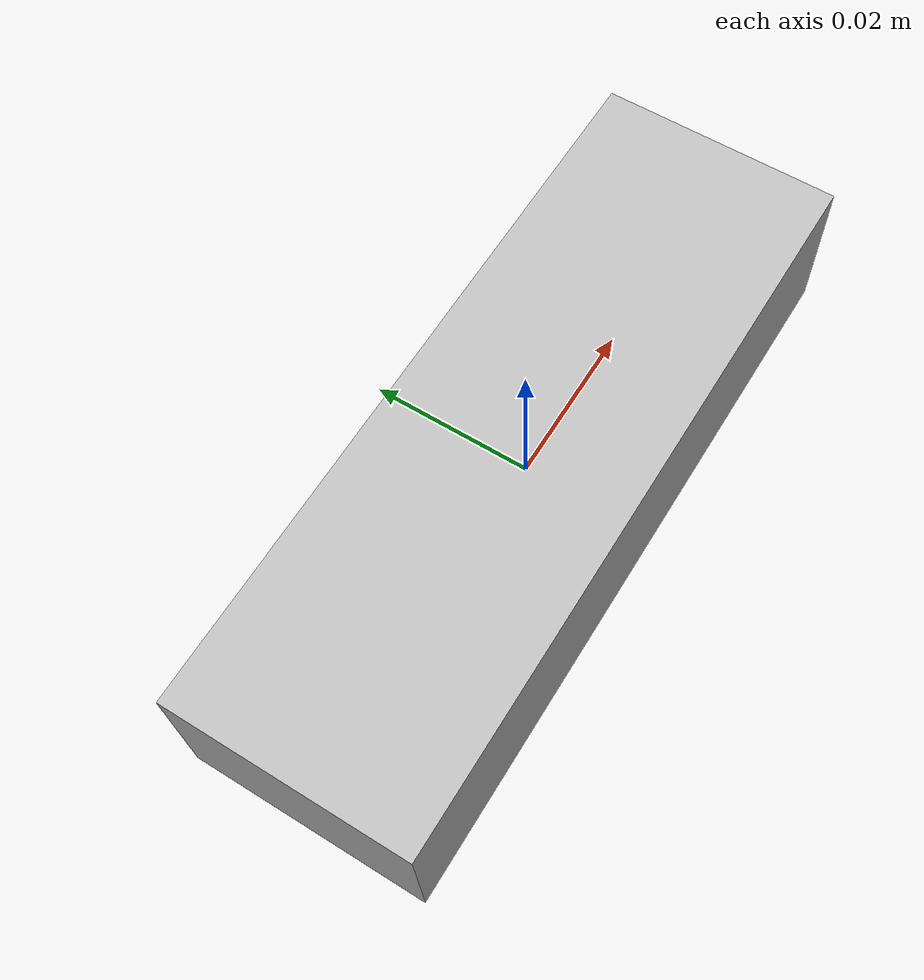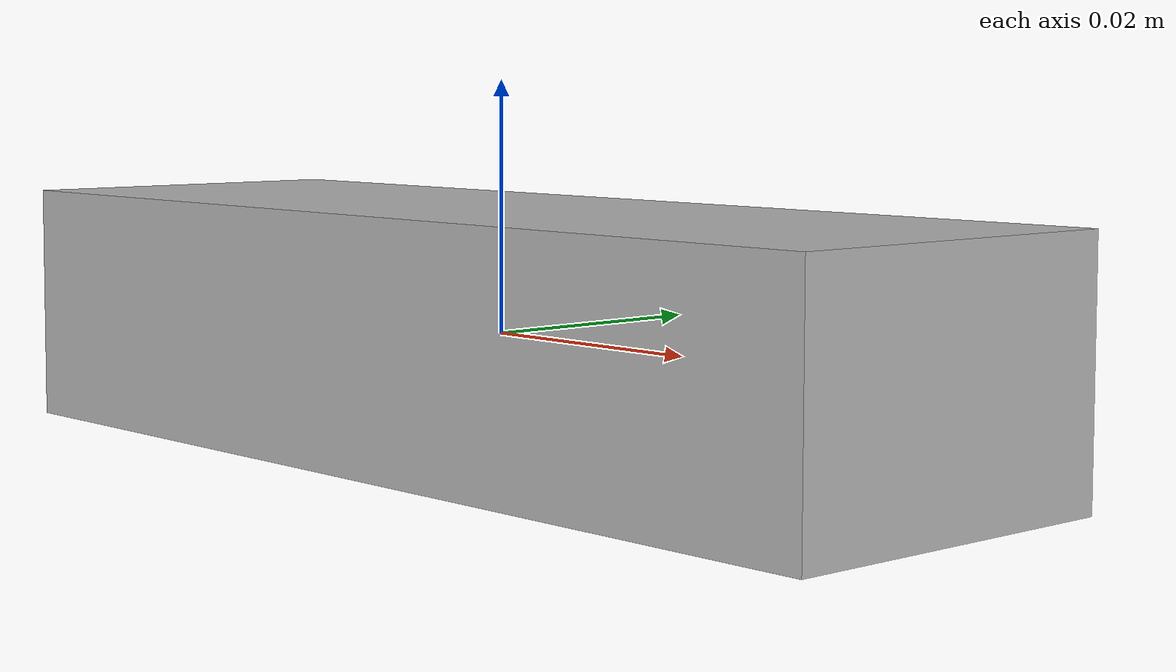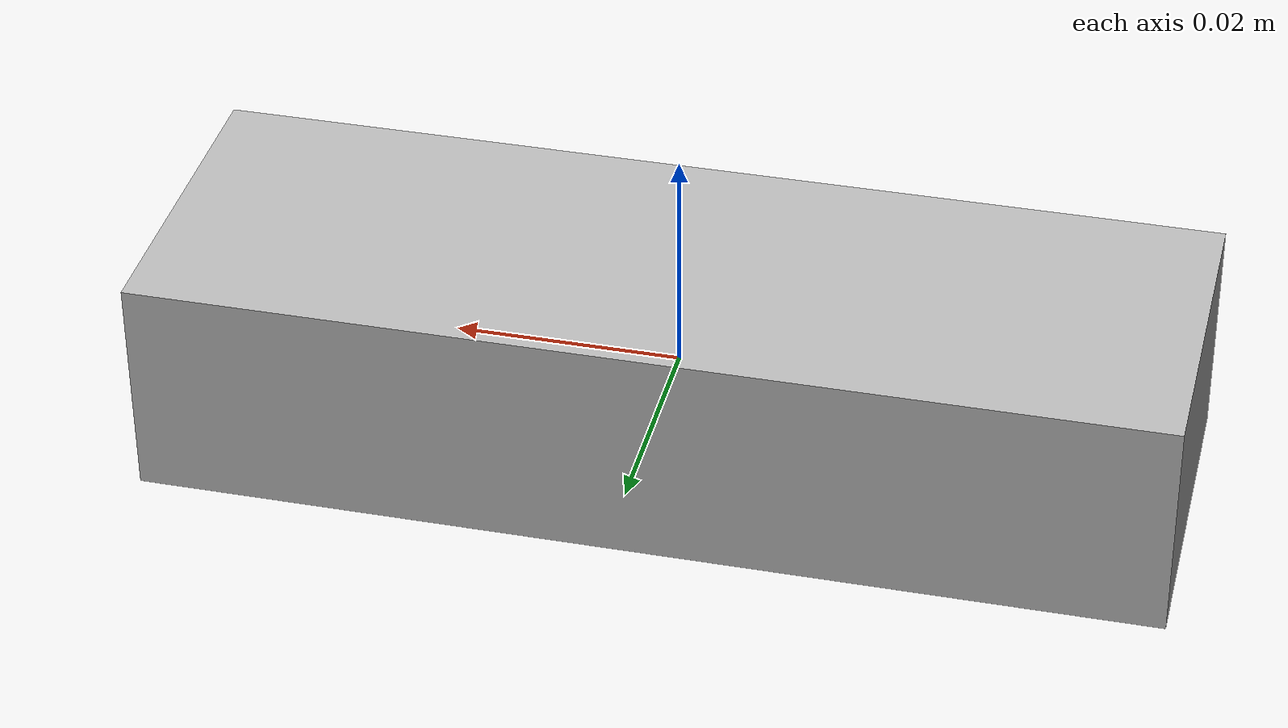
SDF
<sdf version='1.6'>
  <model name='camera'>
    <link name='camera_link'>
      <pose frame=''>0 0 0 0 -0 0</pose>
      <inertial>
        <pose frame=''>0 0 0 0 -0 0</pose>
        <mass>1</mass>
        <inertia>
          <ixx>0.1</ixx>
          <ixy>0</ixy>
          <ixz>0</ixz>
          <iyy>0.1</iyy>
          <iyz>0</iyz>
          <izz>0.1</izz>
        </inertia>
      </inertial>
      <visual name='camera_link_visual'>
        <pose frame=''>0 0 0 0 -0 0</pose>
        <geometry>
          <box>
            <size>0.09 0.03 0.02</size>
          </box>
        </geometry>
        <material>
          <script>
            <uri>__default__</uri>
            <name>__default__</name>
          </script>
        </material>
      </visual>
      <gravity>0</gravity>
      <velocity_decay/>
      <sensor name='motoman_camera' type='camera'>
        <update_rate>30</update_rate>
        <camera name='head'>
          <horizontal_fov>1.39626</horizontal_fov>
          <image>
            <width>1600</width>
            <height>800</height>
            <format>R8G8B8</format>
          </image>
          <clip>
            <near>0.02</near>
            <far>300</far>
          </clip>
          <noise>
            <type>gaussian</type>
            <mean>0</mean>
            <stddev>0.007</stddev>
          </noise>
        </camera>
        <plugin name='camera_controller' filename='libgazebo_ros_camera.so'>
          <alwaysOn>true</alwaysOn>
          <updateRate>0.0</updateRate>
          <cameraName>motoman/camera</cameraName>
          <imageTopicName>image_raw</imageTopicName>
          <cameraInfoTopicName>camera_info</cameraInfoTopicName>
          <frameName>camera_link</frameName>
          <hackBaseline>0.07</hackBaseline>
          <distortionK1>0.0</distortionK1>
          <distortionK2>0.0</distortionK2>
          <distortionK3>0.0</distortionK3>
          <distortionT1>0.0</distortionT1>
          <distortionT2>0.0</distortionT2>
        </plugin>
      </sensor>
    </link>
  </model>
</sdf>
